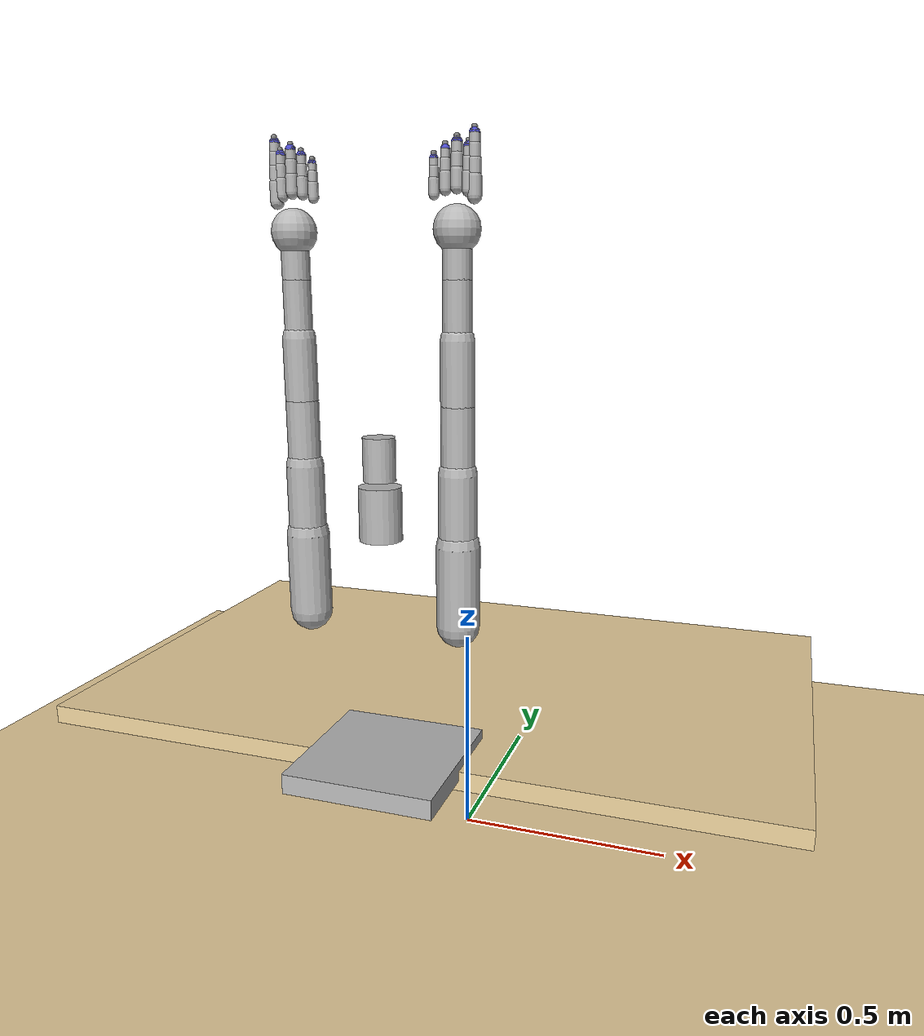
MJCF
<mujoco model="vitacformer_scene">

  <!-- ── 全局选项 ──────────────────────────────────────────────────────── -->
  <option timestep="0.002" gravity="0 0 -9.81" integrator="implicitfast">
    <flag contact="enable" />
  </option>

  <size njmax="2000" nconmax="500" />

  <!-- ── 资源路径 ──────────────────────────────────────────────────────── -->
  <compiler meshdir="meshes" texturedir="textures" angle="radian" />

  <!-- ── 默认关节/执行器属性 ──────────────────────────────────────────── -->
  <default>
    <joint damping="0.1" armature="0.01" frictionloss="0.01" />
    <geom condim="3" friction="1 0.005 0.0001" />
    <motor ctrllimited="true" ctrlrange="-1 1" gear="1" />
    <camera fovy="60" />
  </default>

  <!-- ── 资源声明 ──────────────────────────────────────────────────────── -->
  <asset>
    <!-- 占位材质 (替换为真实 mesh) -->
    <material name="robot_body" rgba="0.7 0.7 0.7 1" />
    <material name="table"      rgba="0.9 0.8 0.6 1" />
    <material name="finger_tip" rgba="0.3 0.3 0.8 1" />
  </asset>

  <!-- ── 世界 ─────────────────────────────────────────────────────────── -->
  <worldbody>

    <!-- 光源 -->
    <light name="top_light"   pos="0 0 3"    dir="0 0 -1" diffuse="0.8 0.8 0.8" />
    <light name="front_light" pos="1 0 2"    dir="-1 0 -1" diffuse="0.4 0.4 0.4" />

    <!-- 地面 -->
    <geom name="floor" type="plane" size="5 5 0.1" material="table" pos="0 0 0" />

    <!-- 桌面 -->
    <body name="table" pos="0 0 0.4">
      <geom name="table_top" type="box" size="0.8 0.5 0.02" material="table" />
      <!-- 任务物体占位符 (由具体 task 脚本动态添加) -->
    </body>

    <!-- ── 机器人底座 ────────────────────────────────────────────────── -->
    <body name="base" pos="0 -0.5 0.42">
      <geom name="base_geom" type="box" size="0.15 0.15 0.02" material="robot_body" />
      <inertial pos="0 0 0" mass="50" diaginertia="1 1 1" />

      <!-- 颈部 (2-DOF: yaw + pitch) -->
      <body name="neck_yaw_link" pos="0 0 0.5">
        <joint name="neck_yaw"   type="hinge" axis="0 0 1"  range="-1.57 1.57" />
        <geom  name="neck_yaw_geom"  type="cylinder" size="0.04 0.05" material="robot_body" />

        <body name="neck_pitch_link" pos="0 0 0.1">
          <joint name="neck_pitch" type="hinge" axis="0 1 0"  range="-0.5 0.5" />
          <geom  name="neck_pitch_geom" type="cylinder" size="0.03 0.04" material="robot_body" />

          <!-- ── 头部相机 ──────────────────────────────────────────── -->
          <camera name="/observe/vision/head/stereo/lefteye/rgb"
                  pos="-0.03 0.12 0.05" euler="1.5708 0 0"
                  fovy="80" />
          <camera name="/observe/vision/head/stereo/righteye/rgb"
                  pos=" 0.03 0.12 0.05" euler="1.5708 0 0"
                  fovy="80" />
        </body>
      </body>

      <!-- ════════════════════════════════════════════════════════════
           右臂 (7-DOF)
           joint 命名: right_arm_j{1..7}
           ════════════════════════════════════════════════════════════ -->
      <body name="right_arm_link0" pos="0.15 0 0.3">
        <joint name="right_arm_j1" type="hinge" axis="0 0 1" range="-2.97 2.97" />
        <geom  type="capsule" size="0.04" fromto="0 0 0  0 0 0.15" material="robot_body" />

        <body name="right_arm_link1" pos="0 0 0.15">
          <joint name="right_arm_j2" type="hinge" axis="0 1 0" range="-1.76 1.76" />
          <geom  type="capsule" size="0.035" fromto="0 0 0  0 0 0.13" material="robot_body" />

          <body name="right_arm_link2" pos="0 0 0.13">
            <joint name="right_arm_j3" type="hinge" axis="0 0 1" range="-2.97 2.97" />
            <geom  type="capsule" size="0.03" fromto="0 0 0  0 0 0.12" material="robot_body" />

            <body name="right_arm_link3" pos="0 0 0.12">
              <joint name="right_arm_j4" type="hinge" axis="0 1 0" range="-2.09 2.09" />
              <geom  type="capsule" size="0.03" fromto="0 0 0  0 0 0.11" material="robot_body" />

              <body name="right_arm_link4" pos="0 0 0.11">
                <joint name="right_arm_j5" type="hinge" axis="0 0 1" range="-2.97 2.97" />
                <geom  type="capsule" size="0.025" fromto="0 0 0  0 0 0.10" material="robot_body" />

                <body name="right_arm_link5" pos="0 0 0.10">
                  <joint name="right_arm_j6" type="hinge" axis="0 1 0" range="-2.09 2.09" />
                  <geom  type="capsule" size="0.025" fromto="0 0 0  0 0 0.08" material="robot_body" />

                  <body name="right_arm_link6" pos="0 0 0.08">
                    <joint name="right_arm_j7" type="hinge" axis="0 0 1" range="-2.97 2.97" />
                    <geom  type="sphere" size="0.04" material="robot_body" />

                    <!-- 右腕相机 -->
                    <camera name="/observe/vision/right_wrist/fisheye/rgb"
                            pos="0 0.05 0.02" euler="1.5708 0 0"
                            fovy="150" />

                    <!-- ── 右手 (21-DOF, SharpaWave) ─────────────── -->
                    <!-- 5 根手指, 每根 4 个关节 (拇指 5 个关节) -->
                    <!-- 拇指: 5 DOF -->
                    <body name="r_thumb_base" pos="0.03 0 0.05">
                      <joint name="r_thumb_j1" type="hinge" axis="1 0 0" range="-0.5 1.57" />
                      <geom  type="capsule" size="0.012" fromto="0 0 0  0 0 0.03" material="robot_body" />
                      <body name="r_thumb_link1" pos="0 0 0.03">
                        <joint name="r_thumb_j2" type="hinge" axis="0 1 0" range="0 1.57" />
                        <geom  type="capsule" size="0.011" fromto="0 0 0  0 0 0.025" material="robot_body" />
                        <body name="r_thumb_link2" pos="0 0 0.025">
                          <joint name="r_thumb_j3" type="hinge" axis="0 1 0" range="0 1.57" />
                          <geom  type="capsule" size="0.010" fromto="0 0 0  0 0 0.022" material="robot_body" />
                          <body name="r_thumb_link3" pos="0 0 0.022">
                            <joint name="r_thumb_j4" type="hinge" axis="0 1 0" range="0 1.57" />
                            <geom  type="capsule" size="0.009" fromto="0 0 0  0 0 0.018" material="robot_body" />
                            <body name="r_thumb_tip" pos="0 0 0.018">
                              <joint name="r_thumb_j5" type="hinge" axis="0 0 1" range="-0.5 0.5" />
                              <geom  name="r_thumb_tip_geom" type="sphere" size="0.009" material="finger_tip" />
                              <!-- 触觉传感器位点 -->
                              <site name="r_thumb_tac" pos="0 0 0.009" size="0.005" />
                            </body>
                          </body>
                        </body>
                      </body>
                    </body>

                    <!-- 食指: 4 DOF -->
                    <body name="r_index_base" pos="0.02 0 0.06">
                      <joint name="r_index_j1" type="hinge" axis="1 0 0" range="-0.3 0.3" />
                      <geom  type="capsule" size="0.011" fromto="0 0 0  0 0 0.025" material="robot_body" />
                      <body name="r_index_link1" pos="0 0 0.025">
                        <joint name="r_index_j2" type="hinge" axis="0 1 0" range="0 1.57" />
                        <geom  type="capsule" size="0.010" fromto="0 0 0  0 0 0.022" material="robot_body" />
                        <body name="r_index_link2" pos="0 0 0.022">
                          <joint name="r_index_j3" type="hinge" axis="0 1 0" range="0 1.57" />
                          <geom  type="capsule" size="0.009" fromto="0 0 0  0 0 0.018" material="robot_body" />
                          <body name="r_index_tip" pos="0 0 0.018">
                            <joint name="r_index_j4" type="hinge" axis="0 1 0" range="0 1.57" />
                            <geom  name="r_index_tip_geom" type="sphere" size="0.009" material="finger_tip" />
                            <site name="r_index_tac" pos="0 0 0.009" size="0.005" />
                          </body>
                        </body>
                      </body>
                    </body>

                    <!-- 中指: 4 DOF -->
                    <body name="r_middle_base" pos="0.00 0 0.065">
                      <joint name="r_middle_j1" type="hinge" axis="1 0 0" range="-0.3 0.3" />
                      <geom  type="capsule" size="0.011" fromto="0 0 0  0 0 0.026" material="robot_body" />
                      <body name="r_middle_link1" pos="0 0 0.026">
                        <joint name="r_middle_j2" type="hinge" axis="0 1 0" range="0 1.57" />
                        <geom  type="capsule" size="0.010" fromto="0 0 0  0 0 0.023" material="robot_body" />
                        <body name="r_middle_link2" pos="0 0 0.023">
                          <joint name="r_middle_j3" type="hinge" axis="0 1 0" range="0 1.57" />
                          <geom  type="capsule" size="0.009" fromto="0 0 0  0 0 0.019" material="robot_body" />
                          <body name="r_middle_tip" pos="0 0 0.019">
                            <joint name="r_middle_j4" type="hinge" axis="0 1 0" range="0 1.57" />
                            <geom  name="r_middle_tip_geom" type="sphere" size="0.009" material="finger_tip" />
                            <site name="r_middle_tac" pos="0 0 0.009" size="0.005" />
                          </body>
                        </body>
                      </body>
                    </body>

                    <!-- 无名指: 4 DOF -->
                    <body name="r_ring_base" pos="-0.02 0 0.062">
                      <joint name="r_ring_j1" type="hinge" axis="1 0 0" range="-0.3 0.3" />
                      <geom  type="capsule" size="0.010" fromto="0 0 0  0 0 0.024" material="robot_body" />
                      <body name="r_ring_link1" pos="0 0 0.024">
                        <joint name="r_ring_j2" type="hinge" axis="0 1 0" range="0 1.57" />
                        <geom  type="capsule" size="0.009" fromto="0 0 0  0 0 0.020" material="robot_body" />
                        <body name="r_ring_link2" pos="0 0 0.020">
                          <joint name="r_ring_j3" type="hinge" axis="0 1 0" range="0 1.57" />
                          <geom  type="capsule" size="0.008" fromto="0 0 0  0 0 0.017" material="robot_body" />
                          <body name="r_ring_tip" pos="0 0 0.017">
                            <joint name="r_ring_j4" type="hinge" axis="0 1 0" range="0 1.57" />
                            <geom  name="r_ring_tip_geom" type="sphere" size="0.008" material="finger_tip" />
                            <site name="r_ring_tac" pos="0 0 0.008" size="0.005" />
                          </body>
                        </body>
                      </body>
                    </body>

                    <!-- 小指: 4 DOF -->
                    <body name="r_little_base" pos="-0.04 0 0.055">
                      <joint name="r_little_j1" type="hinge" axis="1 0 0" range="-0.3 0.3" />
                      <geom  type="capsule" size="0.009" fromto="0 0 0  0 0 0.022" material="robot_body" />
                      <body name="r_little_link1" pos="0 0 0.022">
                        <joint name="r_little_j2" type="hinge" axis="0 1 0" range="0 1.57" />
                        <geom  type="capsule" size="0.008" fromto="0 0 0  0 0 0.018" material="robot_body" />
                        <body name="r_little_link2" pos="0 0 0.018">
                          <joint name="r_little_j3" type="hinge" axis="0 1 0" range="0 1.57" />
                          <geom  type="capsule" size="0.007" fromto="0 0 0  0 0 0.015" material="robot_body" />
                          <body name="r_little_tip" pos="0 0 0.015">
                            <joint name="r_little_j4" type="hinge" axis="0 1 0" range="0 1.57" />
                            <geom  name="r_little_tip_geom" type="sphere" size="0.007" material="finger_tip" />
                            <site name="r_little_tac" pos="0 0 0.007" size="0.005" />
                          </body>
                        </body>
                      </body>
                    </body>

                  </body><!-- right_arm_link6 -->
                </body>
              </body>
            </body>
          </body>
        </body>
      </body>

      <!-- ════════════════════════════════════════════════════════════
           左臂 (7-DOF, 镜像右臂)
           ════════════════════════════════════════════════════════════ -->
      <body name="left_arm_link0" pos="-0.15 0 0.3">
        <joint name="left_arm_j1" type="hinge" axis="0 0 1" range="-2.97 2.97" />
        <geom  type="capsule" size="0.04" fromto="0 0 0  0 0 0.15" material="robot_body" />

        <body name="left_arm_link1" pos="0 0 0.15">
          <joint name="left_arm_j2" type="hinge" axis="0 1 0" range="-1.76 1.76" />
          <geom  type="capsule" size="0.035" fromto="0 0 0  0 0 0.13" material="robot_body" />

          <body name="left_arm_link2" pos="0 0 0.13">
            <joint name="left_arm_j3" type="hinge" axis="0 0 1" range="-2.97 2.97" />
            <geom  type="capsule" size="0.03" fromto="0 0 0  0 0 0.12" material="robot_body" />

            <body name="left_arm_link3" pos="0 0 0.12">
              <joint name="left_arm_j4" type="hinge" axis="0 1 0" range="-2.09 2.09" />
              <geom  type="capsule" size="0.03" fromto="0 0 0  0 0 0.11" material="robot_body" />

              <body name="left_arm_link4" pos="0 0 0.11">
                <joint name="left_arm_j5" type="hinge" axis="0 0 1" range="-2.97 2.97" />
                <geom  type="capsule" size="0.025" fromto="0 0 0  0 0 0.10" material="robot_body" />

                <body name="left_arm_link5" pos="0 0 0.10">
                  <joint name="left_arm_j6" type="hinge" axis="0 1 0" range="-2.09 2.09" />
                  <geom  type="capsule" size="0.025" fromto="0 0 0  0 0 0.08" material="robot_body" />

                  <body name="left_arm_link6" pos="0 0 0.08">
                    <joint name="left_arm_j7" type="hinge" axis="0 0 1" range="-2.97 2.97" />
                    <geom  type="sphere" size="0.04" material="robot_body" />

                    <!-- 左腕相机 -->
                    <camera name="/observe/vision/left_wrist/fisheye/rgb"
                            pos="0 0.05 0.02" euler="1.5708 0 0"
                            fovy="150" />

                    <!-- 左手 (21-DOF, 结构同右手, 镜像) -->
                    <body name="l_thumb_base" pos="-0.03 0 0.05">
                      <joint name="l_thumb_j1" type="hinge" axis="1 0 0" range="-0.5 1.57" />
                      <geom  type="capsule" size="0.012" fromto="0 0 0  0 0 0.03" material="robot_body" />
                      <body name="l_thumb_link1" pos="0 0 0.03">
                        <joint name="l_thumb_j2" type="hinge" axis="0 1 0" range="0 1.57" />
                        <geom  type="capsule" size="0.011" fromto="0 0 0  0 0 0.025" material="robot_body" />
                        <body name="l_thumb_link2" pos="0 0 0.025">
                          <joint name="l_thumb_j3" type="hinge" axis="0 1 0" range="0 1.57" />
                          <geom  type="capsule" size="0.010" fromto="0 0 0  0 0 0.022" material="robot_body" />
                          <body name="l_thumb_link3" pos="0 0 0.022">
                            <joint name="l_thumb_j4" type="hinge" axis="0 1 0" range="0 1.57" />
                            <geom  type="capsule" size="0.009" fromto="0 0 0  0 0 0.018" material="robot_body" />
                            <body name="l_thumb_tip" pos="0 0 0.018">
                              <joint name="l_thumb_j5" type="hinge" axis="0 0 1" range="-0.5 0.5" />
                              <geom  name="l_thumb_tip_geom" type="sphere" size="0.009" material="finger_tip" />
                              <site name="l_thumb_tac" pos="0 0 0.009" size="0.005" />
                            </body>
                          </body>
                        </body>
                      </body>
                    </body>

                    <body name="l_index_base" pos="-0.02 0 0.06">
                      <joint name="l_index_j1" type="hinge" axis="1 0 0" range="-0.3 0.3" />
                      <geom  type="capsule" size="0.011" fromto="0 0 0  0 0 0.025" material="robot_body" />
                      <body name="l_index_link1" pos="0 0 0.025">
                        <joint name="l_index_j2" type="hinge" axis="0 1 0" range="0 1.57" />
                        <geom  type="capsule" size="0.010" fromto="0 0 0  0 0 0.022" material="robot_body" />
                        <body name="l_index_link2" pos="0 0 0.022">
                          <joint name="l_index_j3" type="hinge" axis="0 1 0" range="0 1.57" />
                          <geom  type="capsule" size="0.009" fromto="0 0 0  0 0 0.018" material="robot_body" />
                          <body name="l_index_tip" pos="0 0 0.018">
                            <joint name="l_index_j4" type="hinge" axis="0 1 0" range="0 1.57" />
                            <geom  name="l_index_tip_geom" type="sphere" size="0.009" material="finger_tip" />
                            <site name="l_index_tac" pos="0 0 0.009" size="0.005" />
                          </body>
                        </body>
                      </body>
                    </body>

                    <body name="l_middle_base" pos="0.00 0 0.065">
                      <joint name="l_middle_j1" type="hinge" axis="1 0 0" range="-0.3 0.3" />
                      <geom  type="capsule" size="0.011" fromto="0 0 0  0 0 0.026" material="robot_body" />
                      <body name="l_middle_link1" pos="0 0 0.026">
                        <joint name="l_middle_j2" type="hinge" axis="0 1 0" range="0 1.57" />
                        <geom  type="capsule" size="0.010" fromto="0 0 0  0 0 0.023" material="robot_body" />
                        <body name="l_middle_link2" pos="0 0 0.023">
                          <joint name="l_middle_j3" type="hinge" axis="0 1 0" range="0 1.57" />
                          <geom  type="capsule" size="0.009" fromto="0 0 0  0 0 0.019" material="robot_body" />
                          <body name="l_middle_tip" pos="0 0 0.019">
                            <joint name="l_middle_j4" type="hinge" axis="0 1 0" range="0 1.57" />
                            <geom  name="l_middle_tip_geom" type="sphere" size="0.009" material="finger_tip" />
                            <site name="l_middle_tac" pos="0 0 0.009" size="0.005" />
                          </body>
                        </body>
                      </body>
                    </body>

                    <body name="l_ring_base" pos="0.02 0 0.062">
                      <joint name="l_ring_j1" type="hinge" axis="1 0 0" range="-0.3 0.3" />
                      <geom  type="capsule" size="0.010" fromto="0 0 0  0 0 0.024" material="robot_body" />
                      <body name="l_ring_link1" pos="0 0 0.024">
                        <joint name="l_ring_j2" type="hinge" axis="0 1 0" range="0 1.57" />
                        <geom  type="capsule" size="0.009" fromto="0 0 0  0 0 0.020" material="robot_body" />
                        <body name="l_ring_link2" pos="0 0 0.020">
                          <joint name="l_ring_j3" type="hinge" axis="0 1 0" range="0 1.57" />
                          <geom  type="capsule" size="0.008" fromto="0 0 0  0 0 0.017" material="robot_body" />
                          <body name="l_ring_tip" pos="0 0 0.017">
                            <joint name="l_ring_j4" type="hinge" axis="0 1 0" range="0 1.57" />
                            <geom  name="l_ring_tip_geom" type="sphere" size="0.008" material="finger_tip" />
                            <site name="l_ring_tac" pos="0 0 0.008" size="0.005" />
                          </body>
                        </body>
                      </body>
                    </body>

                    <body name="l_little_base" pos="0.04 0 0.055">
                      <joint name="l_little_j1" type="hinge" axis="1 0 0" range="-0.3 0.3" />
                      <geom  type="capsule" size="0.009" fromto="0 0 0  0 0 0.022" material="robot_body" />
                      <body name="l_little_link1" pos="0 0 0.022">
                        <joint name="l_little_j2" type="hinge" axis="0 1 0" range="0 1.57" />
                        <geom  type="capsule" size="0.008" fromto="0 0 0  0 0 0.018" material="robot_body" />
                        <body name="l_little_link2" pos="0 0 0.018">
                          <joint name="l_little_j3" type="hinge" axis="0 1 0" range="0 1.57" />
                          <geom  type="capsule" size="0.007" fromto="0 0 0  0 0 0.015" material="robot_body" />
                          <body name="l_little_tip" pos="0 0 0.015">
                            <joint name="l_little_j4" type="hinge" axis="0 1 0" range="0 1.57" />
                            <geom  name="l_little_tip_geom" type="sphere" size="0.007" material="finger_tip" />
                            <site name="l_little_tac" pos="0 0 0.007" size="0.005" />
                          </body>
                        </body>
                      </body>
                    </body>

                  </body><!-- left_arm_link6 -->
                </body>
              </body>
            </body>
          </body>
        </body>
      </body><!-- left_arm_link0 -->

    </body><!-- base -->
  </worldbody>

  <!-- ── 执行器 (position control) ──────────────────────────────────────── -->
  <actuator>
    <!-- 颈部 -->
    <position name="act_neck_yaw"   joint="neck_yaw"   kp="50" />
    <position name="act_neck_pitch" joint="neck_pitch" kp="50" />

    <!-- 右臂 -->
    <position name="act_r_arm_j1" joint="right_arm_j1" kp="200" />
    <position name="act_r_arm_j2" joint="right_arm_j2" kp="200" />
    <position name="act_r_arm_j3" joint="right_arm_j3" kp="150" />
    <position name="act_r_arm_j4" joint="right_arm_j4" kp="150" />
    <position name="act_r_arm_j5" joint="right_arm_j5" kp="100" />
    <position name="act_r_arm_j6" joint="right_arm_j6" kp="100" />
    <position name="act_r_arm_j7" joint="right_arm_j7" kp="80"  />

    <!-- 右手 -->
    <position name="act_r_thumb_j1"  joint="r_thumb_j1"  kp="20" />
    <position name="act_r_thumb_j2"  joint="r_thumb_j2"  kp="20" />
    <position name="act_r_thumb_j3"  joint="r_thumb_j3"  kp="15" />
    <position name="act_r_thumb_j4"  joint="r_thumb_j4"  kp="15" />
    <position name="act_r_thumb_j5"  joint="r_thumb_j5"  kp="10" />
    <position name="act_r_index_j1"  joint="r_index_j1"  kp="20" />
    <position name="act_r_index_j2"  joint="r_index_j2"  kp="20" />
    <position name="act_r_index_j3"  joint="r_index_j3"  kp="15" />
    <position name="act_r_index_j4"  joint="r_index_j4"  kp="15" />
    <position name="act_r_middle_j1" joint="r_middle_j1" kp="20" />
    <position name="act_r_middle_j2" joint="r_middle_j2" kp="20" />
    <position name="act_r_middle_j3" joint="r_middle_j3" kp="15" />
    <position name="act_r_middle_j4" joint="r_middle_j4" kp="15" />
    <position name="act_r_ring_j1"   joint="r_ring_j1"   kp="20" />
    <position name="act_r_ring_j2"   joint="r_ring_j2"   kp="20" />
    <position name="act_r_ring_j3"   joint="r_ring_j3"   kp="15" />
    <position name="act_r_ring_j4"   joint="r_ring_j4"   kp="15" />
    <position name="act_r_little_j1" joint="r_little_j1" kp="20" />
    <position name="act_r_little_j2" joint="r_little_j2" kp="20" />
    <position name="act_r_little_j3" joint="r_little_j3" kp="15" />

    <!-- 左臂 -->
    <position name="act_l_arm_j1" joint="left_arm_j1" kp="200" />
    <position name="act_l_arm_j2" joint="left_arm_j2" kp="200" />
    <position name="act_l_arm_j3" joint="left_arm_j3" kp="150" />
    <position name="act_l_arm_j4" joint="left_arm_j4" kp="150" />
    <position name="act_l_arm_j5" joint="left_arm_j5" kp="100" />
    <position name="act_l_arm_j6" joint="left_arm_j6" kp="100" />
    <position name="act_l_arm_j7" joint="left_arm_j7" kp="80"  />

    <!-- 左手 -->
    <position name="act_l_thumb_j1"  joint="l_thumb_j1"  kp="20" />
    <position name="act_l_thumb_j2"  joint="l_thumb_j2"  kp="20" />
    <position name="act_l_thumb_j3"  joint="l_thumb_j3"  kp="15" />
    <position name="act_l_thumb_j4"  joint="l_thumb_j4"  kp="15" />
    <position name="act_l_thumb_j5"  joint="l_thumb_j5"  kp="10" />
    <position name="act_l_index_j1"  joint="l_index_j1"  kp="20" />
    <position name="act_l_index_j2"  joint="l_index_j2"  kp="20" />
    <position name="act_l_index_j3"  joint="l_index_j3"  kp="15" />
    <position name="act_l_index_j4"  joint="l_index_j4"  kp="15" />
    <position name="act_l_middle_j1" joint="l_middle_j1" kp="20" />
    <position name="act_l_middle_j2" joint="l_middle_j2" kp="20" />
    <position name="act_l_middle_j3" joint="l_middle_j3" kp="15" />
    <position name="act_l_middle_j4" joint="l_middle_j4" kp="15" />
    <position name="act_l_ring_j1"   joint="l_ring_j1"   kp="20" />
    <position name="act_l_ring_j2"   joint="l_ring_j2"   kp="20" />
    <position name="act_l_ring_j3"   joint="l_ring_j3"   kp="15" />
    <position name="act_l_ring_j4"   joint="l_ring_j4"   kp="15" />
    <position name="act_l_little_j1" joint="l_little_j1" kp="20" />
    <position name="act_l_little_j2" joint="l_little_j2" kp="20" />
    <position name="act_l_little_j3" joint="l_little_j3" kp="15" />
  </actuator>

  <!-- ── 触觉传感器 ──────────────────────────────────────────────────────── -->
  <!-- 每个指尖读取接触力 (force/torque 各3维 → 每指6维, 10根手指 = 60维)  -->
  <!-- 注: 可按需扩展为 18×120 格式以匹配训练数据                          -->
  <sensor>
    <touch name="r_thumb_touch"  site="r_thumb_tac"  />
    <touch name="r_index_touch"  site="r_index_tac"  />
    <touch name="r_middle_touch" site="r_middle_tac" />
    <touch name="r_ring_touch"   site="r_ring_tac"   />
    <touch name="r_little_touch" site="r_little_tac" />

    <touch name="l_thumb_touch"  site="l_thumb_tac"  />
    <touch name="l_index_touch"  site="l_index_tac"  />
    <touch name="l_middle_touch" site="l_middle_tac" />
    <touch name="l_ring_touch"   site="l_ring_tac"   />
    <touch name="l_little_touch" site="l_little_tac" />

    <!-- 每根手指完整 force/torque (3+3 = 6维) -->
    <force  name="r_thumb_force"  site="r_thumb_tac"  />
    <torque name="r_thumb_torque" site="r_thumb_tac"  />
    <force  name="r_index_force"  site="r_index_tac"  />
    <torque name="r_index_torque" site="r_index_tac"  />
    <force  name="r_middle_force" site="r_middle_tac" />
    <torque name="r_middle_torque" site="r_middle_tac" />
    <force  name="r_ring_force"   site="r_ring_tac"   />
    <torque name="r_ring_torque"  site="r_ring_tac"   />
    <force  name="r_little_force" site="r_little_tac" />
    <torque name="r_little_torque" site="r_little_tac" />

    <force  name="l_thumb_force"  site="l_thumb_tac"  />
    <torque name="l_thumb_torque" site="l_thumb_tac"  />
    <force  name="l_index_force"  site="l_index_tac"  />
    <torque name="l_index_torque" site="l_index_tac"  />
    <force  name="l_middle_force" site="l_middle_tac" />
    <torque name="l_middle_torque" site="l_middle_tac" />
    <force  name="l_ring_force"   site="l_ring_tac"   />
    <torque name="l_ring_torque"  site="l_ring_tac"   />
    <force  name="l_little_force" site="l_little_tac" />
    <torque name="l_little_torque" site="l_little_tac" />
  </sensor>

</mujoco>
